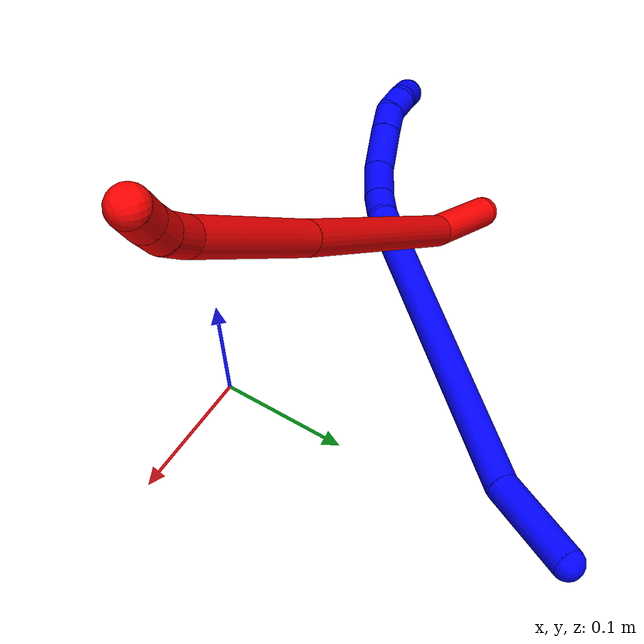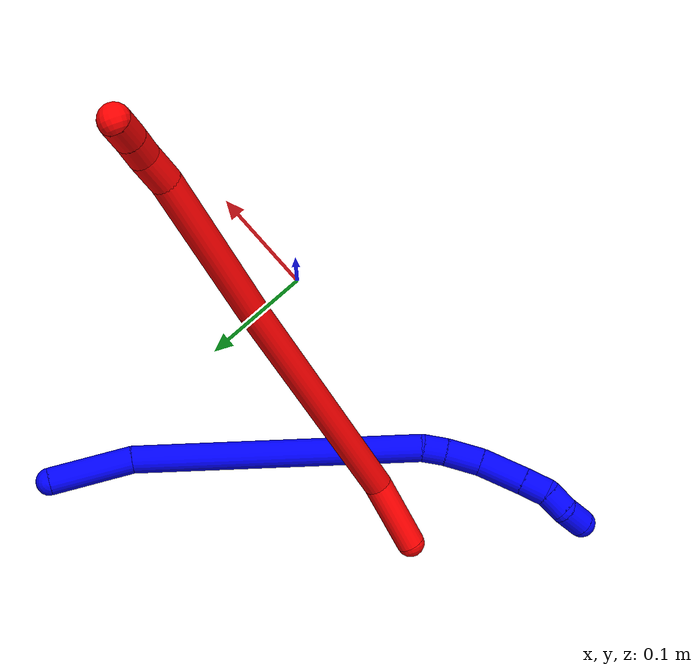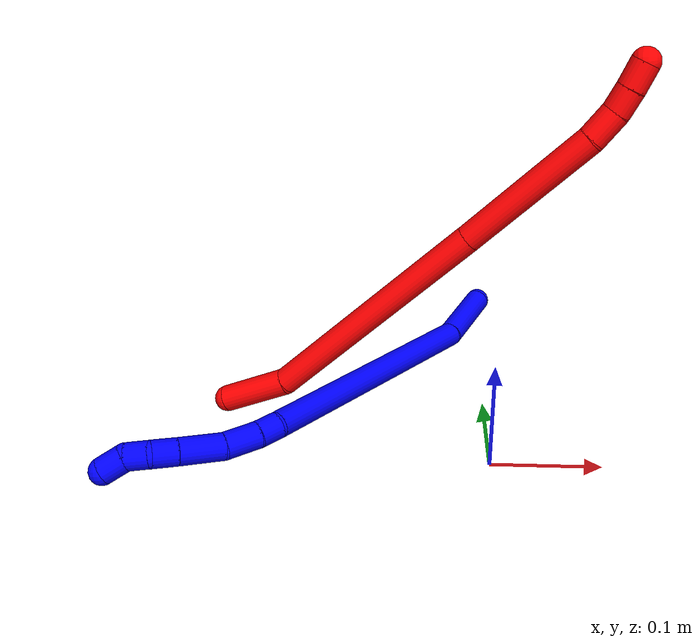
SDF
<sdf version="1.7">
 <world name="default">
  <plugin name="TubeGeneratorPlugin" filename="libtube_generator_plugin.so"/>
  <model name="photoneo_s_sensor">
   <static>1</static>
   <pose>0 0 2 1.57079 1.57079 3.14159</pose>
   <link name="link">
    <inertial><mass>0.1</mass></inertial>
    <sensor name="sensor" type="depth">
     <update_rate>30</update_rate>
     <camera>
      <horizontal_fov>1.22</horizontal_fov>
      <image><width>1920</width><height>1200</height><format>B8G8R8</format></image>
      <clip><near>0.1</near><far>4</far></clip>
      <depth_camera><output>points</output></depth_camera>
     </camera>
     <plugin name="camera_plugin" filename="libgazebo_ros_depth_camera.so">
      <baseline>0.2</baseline>
      <alwaysOn>1</alwaysOn>
      <updateRate>0.0</updateRate>
      <cameraName>camera_ir</cameraName>
      <imageTopicName>/camera/color/image_raw</imageTopicName>
      <cameraInfoTopicName>/camera/color/camera_info</cameraInfoTopicName>
      <depthImageTopicName>/camera/depth/image_raw</depthImageTopicName>
      <depthImageCameraInfoTopicName>/camera/depth/camera_info</depthImageCameraInfoTopicName>
      <pointCloudTopicName>/camera/depth/points</pointCloudTopicName>
      <frameName>fr_optical</frameName>
      <pointCloudCutoff>0.1</pointCloudCutoff>
      <pointCloudCutoffMax>2.0</pointCloudCutoffMax>
      <distortionK1>0</distortionK1>
      <distortionK2>0</distortionK2>
      <distortionK3>0</distortionK3>
      <distortionT1>0</distortionT1>
      <distortionT2>0</distortionT2>
      <CxPrime>0</CxPrime>
      <Cx>0</Cx>
      <Cy>0</Cy>
      <focalLength>0</focalLength>
      <hackBaseline>0</hackBaseline>
     </plugin>
    </sensor>
   </link>
  </model>
  <gravity>0 0 -9.8</gravity>
  <magnetic_field>6e-06 2.3e-05 -4.2e-05</magnetic_field>
  <atmosphere type="adiabatic"/>
  <physics name="default_physics" default="0" type="ode">
   <max_step_size>0.003</max_step_size>
   <real_time_factor>1</real_time_factor>
   <real_time_update_rate>1000</real_time_update_rate>
   <max_contacts>10000</max_contacts>
   <ode>
    <solver>
     <type>quick</type>
     <iters>100</iters>
     <sor>1.3</sor>
     <use_dynamic_moi_rescaling>0</use_dynamic_moi_rescaling>
    </solver>
    <constraints>
     <contact_max_correcting_vel>0</contact_max_correcting_vel>
     <contact_surface_layer>0.001</contact_surface_layer>
     <cfm>0</cfm>
     <erp>0.2</erp>
    </constraints>
   </ode>
  </physics>
  <scene><ambient>0.4 0.4 0.4 1</ambient><background>0.7 0.7 0.7 1</background><shadows>0</shadows></scene>
  <audio><device>default</device></audio>
  <spherical_coordinates>
   <surface_model>EARTH_WGS84</surface_model>
   <latitude_deg>0</latitude_deg>
   <longitude_deg>0</longitude_deg>
   <elevation>0</elevation>
   <heading_deg>0</heading_deg>
  </spherical_coordinates>
  <model name="bin">
   <static>1</static>
   <link name="bottom">
    <collision name="collision-bottom">
     <pose>0 0 -0.01 0 -0 0</pose>
     <geometry><box><size>0.8 0.6 0.02</size></box></geometry>
     <surface>
      <friction><ode><mu>100</mu><mu2>100</mu2></ode></friction>
      <contact><collide_bitmask>65535</collide_bitmask></contact>
     </surface>
    </collision>
   </link>
   <link name="west_wall">
    <collision name="collision-west_wall">
     <pose>-0.41 0 0.1 0 -0 0</pose>
     <geometry><box><size>0.02 0.6 0.2</size></box></geometry>
     <surface>
      <friction><ode><mu>100</mu><mu2>100</mu2></ode></friction>
      <contact><collide_bitmask>65535</collide_bitmask></contact>
     </surface>
    </collision>
   </link>
   <link name="east_wall">
    <collision name="collision-east_wall">
     <pose>0.41 0 0.1 0 -0 0</pose>
     <geometry><box><size>0.02 0.6 0.2</size></box></geometry>
     <surface>
      <friction><ode><mu>100</mu><mu2>100</mu2></ode></friction>
      <contact><collide_bitmask>65535</collide_bitmask></contact>
     </surface>
    </collision>
   </link>
   <link name="south_wall">
    <collision name="collision-south_wall">
     <pose>0 -0.31 0.1 0 -0 0</pose>
     <geometry><box><size>0.8 0.02 0.2</size></box></geometry>
     <surface>
      <friction><ode><mu>100</mu><mu2>100</mu2></ode></friction>
      <contact><collide_bitmask>65535</collide_bitmask></contact>
     </surface>
    </collision>
   </link>
   <link name="north_wall">
    <collision name="collision-north_wall">
     <pose>0 0.31 0.1 0 -0 0</pose>
     <geometry><box><size>0.8 0.02 0.2</size></box></geometry>
     <surface>
      <friction><ode><mu>100</mu><mu2>100</mu2></ode></friction>
      <contact><collide_bitmask>65535</collide_bitmask></contact>
     </surface>
    </collision>
   </link>
  </model>
  <model name="1">
   <static>0</static>
   <link name="1">
    <collision name="collision-cylinder-e_1_1_4">
     <pose>-0.027563 -0.025953 -0.003793 1.71592 -0.810196 -0.920956</pose>
     <geometry><cylinder><radius>0.0125</radius><length>0.076097</length></cylinder></geometry>
     <surface>
      <friction><ode><mu>1.16</mu><mu2>1.16</mu2><slip1>0</slip1><slip2>0</slip2></ode></friction>
      <contact><ode><kp>1e+06</kp><kd>1</kd><max_vel>0</max_vel><min_depth>0.001</min_depth></ode></contact>
     </surface>
    </collision>
    <visual name="visual-cylinder-e_1_1_4">
     <pose>-0.027563 -0.025953 -0.003793 1.71592 -0.810196 -0.920956</pose>
     <geometry><cylinder><radius>0.0125</radius><length>0.076097</length></cylinder></geometry>
     <material><ambient>0 0 1 1</ambient></material>
    </visual>
    <collision name="collision-cylinder-e_2_4_5">
     <pose>-0.126254 -0.154329 -0.044443 1.91622 -0.578787 -0.801351</pose>
     <geometry><cylinder><radius>0.0125</radius><length>0.260061</length></cylinder></geometry>
     <surface>
      <friction><ode><mu>1.16</mu><mu2>1.16</mu2><slip1>0</slip1><slip2>0</slip2></ode></friction>
      <contact><ode><kp>1e+06</kp><kd>1</kd><max_vel>0</max_vel><min_depth>0.001</min_depth></ode></contact>
     </surface>
    </collision>
    <visual name="visual-cylinder-e_2_4_5">
     <pose>-0.126254 -0.154329 -0.044443 1.91622 -0.578787 -0.801351</pose>
     <geometry><cylinder><radius>0.0125</radius><length>0.260061</length></cylinder></geometry>
     <material><ambient>0 0 1 1</ambient></material>
    </visual>
    <collision name="collision-cylinder-e_3_5_6">
     <pose>-0.201304 -0.266429 -0.083165 1.76119 -0.378751 -0.456199</pose>
     <geometry><cylinder><radius>0.0125</radius><length>0.021216</length></cylinder></geometry>
     <surface>
      <friction><ode><mu>1.16</mu><mu2>1.16</mu2><slip1>0</slip1><slip2>0</slip2></ode></friction>
      <contact><ode><kp>1e+06</kp><kd>1</kd><max_vel>0</max_vel><min_depth>0.001</min_depth></ode></contact>
     </surface>
    </collision>
    <visual name="visual-cylinder-e_3_5_6">
     <pose>-0.201304 -0.266429 -0.083165 1.76119 -0.378751 -0.456199</pose>
     <geometry><cylinder><radius>0.0125</radius><length>0.021216</length></cylinder></geometry>
     <material><ambient>0 0 1 1</ambient></material>
    </visual>
    <collision name="collision-cylinder-e_4_6_7">
     <pose>-0.209567 -0.291503 -0.08903 1.82497 -0.266401 -0.3431</pose>
     <geometry><cylinder><radius>0.0125</radius><length>0.032978</length></cylinder></geometry>
     <surface>
      <friction><ode><mu>1.16</mu><mu2>1.16</mu2><slip1>0</slip1><slip2>0</slip2></ode></friction>
      <contact><ode><kp>1e+06</kp><kd>1</kd><max_vel>0</max_vel><min_depth>0.001</min_depth></ode></contact>
     </surface>
    </collision>
    <visual name="visual-cylinder-e_4_6_7">
     <pose>-0.209567 -0.291503 -0.08903 1.82497 -0.266401 -0.3431</pose>
     <geometry><cylinder><radius>0.0125</radius><length>0.032978</length></cylinder></geometry>
     <material><ambient>0 0 1 1</ambient></material>
    </visual>
    <collision name="collision-cylinder-e_5_7_8">
     <pose>-0.216066 -0.325866 -0.101015 1.96929 -0.104474 -0.157161</pose>
     <geometry><cylinder><radius>0.0125</radius><length>0.041384</length></cylinder></geometry>
     <surface>
      <friction><ode><mu>1.16</mu><mu2>1.16</mu2><slip1>0</slip1><slip2>0</slip2></ode></friction>
      <contact><ode><kp>1e+06</kp><kd>1</kd><max_vel>0</max_vel><min_depth>0.001</min_depth></ode></contact>
     </surface>
    </collision>
    <visual name="visual-cylinder-e_5_7_8">
     <pose>-0.216066 -0.325866 -0.101015 1.96929 -0.104474 -0.157161</pose>
     <geometry><cylinder><radius>0.0125</radius><length>0.041384</length></cylinder></geometry>
     <material><ambient>0 0 1 1</ambient></material>
    </visual>
    <collision name="collision-cylinder-e_6_8_9">
     <pose>-0.219073 -0.355579 -0.113497 1.96708 -0.072758 -0.109253</pose>
     <geometry><cylinder><radius>0.0125</radius><length>0.02336</length></cylinder></geometry>
     <surface>
      <friction><ode><mu>1.16</mu><mu2>1.16</mu2><slip1>0</slip1><slip2>0</slip2></ode></friction>
      <contact><ode><kp>1e+06</kp><kd>1</kd><max_vel>0</max_vel><min_depth>0.001</min_depth></ode></contact>
     </surface>
    </collision>
    <visual name="visual-cylinder-e_6_8_9">
     <pose>-0.219073 -0.355579 -0.113497 1.96708 -0.072758 -0.109253</pose>
     <geometry><cylinder><radius>0.0125</radius><length>0.02336</length></cylinder></geometry>
     <material><ambient>0 0 1 1</ambient></material>
    </visual>
    <collision name="collision-cylinder-e_7_9_10">
     <pose>-0.21738 -0.376559 -0.119712 1.73719 0.240266 0.283445</pose>
     <geometry><cylinder><radius>0.0125</radius><length>0.021368</length></cylinder></geometry>
     <surface>
      <friction><ode><mu>1.16</mu><mu2>1.16</mu2><slip1>0</slip1><slip2>0</slip2></ode></friction>
      <contact><ode><kp>1e+06</kp><kd>1</kd><max_vel>0</max_vel><min_depth>0.001</min_depth></ode></contact>
     </surface>
    </collision>
    <visual name="visual-cylinder-e_7_9_10">
     <pose>-0.21738 -0.376559 -0.119712 1.73719 0.240266 0.283445</pose>
     <geometry><cylinder><radius>0.0125</radius><length>0.021368</length></cylinder></geometry>
     <material><ambient>0 0 1 1</ambient></material>
    </visual>
    <collision name="collision-cylinder-e_8_10_2">
     <pose>-0.214444 -0.398243 -0.118738 1.33982 0.03342 0.026473</pose>
     <geometry><cylinder><radius>0.0125</radius><length>0.023537</length></cylinder></geometry>
     <surface>
      <friction><ode><mu>1.16</mu><mu2>1.16</mu2><slip1>0</slip1><slip2>0</slip2></ode></friction>
      <contact><ode><kp>1e+06</kp><kd>1</kd><max_vel>0</max_vel><min_depth>0.001</min_depth></ode></contact>
     </surface>
    </collision>
    <visual name="visual-cylinder-e_8_10_2">
     <pose>-0.214444 -0.398243 -0.118738 1.33982 0.03342 0.026473</pose>
     <geometry><cylinder><radius>0.0125</radius><length>0.023537</length></cylinder></geometry>
     <material><ambient>0 0 1 1</ambient></material>
    </visual>
    <collision name="collision-sphere-2">
     <pose>-0.214051 -0.409692 -0.116046 0 -0 0</pose>
     <geometry><sphere><radius>0.0125</radius></sphere></geometry>
     <surface>
      <friction><ode><mu>1.16</mu><mu2>1.16</mu2><slip1>0</slip1><slip2>0</slip2></ode></friction>
      <contact><ode><kp>1e+06</kp><kd>1</kd><max_vel>0</max_vel><min_depth>0.001</min_depth></ode></contact>
     </surface>
    </collision>
    <visual name="visual-sphere-2">
     <pose>-0.214051 -0.409692 -0.116046 0 -0 0</pose>
     <geometry><sphere><radius>0.0125</radius></sphere></geometry>
     <material><ambient>0 0 1 1</ambient></material>
    </visual>
    <collision name="collision-sphere-10">
     <pose>-0.214837 -0.386793 -0.121431 0 -0 0</pose>
     <geometry><sphere><radius>0.0125</radius></sphere></geometry>
     <surface>
      <friction><ode><mu>1.16</mu><mu2>1.16</mu2><slip1>0</slip1><slip2>0</slip2></ode></friction>
      <contact><ode><kp>1e+06</kp><kd>1</kd><max_vel>0</max_vel><min_depth>0.001</min_depth></ode></contact>
     </surface>
    </collision>
    <visual name="visual-sphere-10">
     <pose>-0.214837 -0.386793 -0.121431 0 -0 0</pose>
     <geometry><sphere><radius>0.0125</radius></sphere></geometry>
     <material><ambient>0 0 1 1</ambient></material>
    </visual>
    <collision name="collision-sphere-9">
     <pose>-0.219922 -0.366325 -0.117993 0 -0 0</pose>
     <geometry><sphere><radius>0.0125</radius></sphere></geometry>
     <surface>
      <friction><ode><mu>1.16</mu><mu2>1.16</mu2><slip1>0</slip1><slip2>0</slip2></ode></friction>
      <contact><ode><kp>1e+06</kp><kd>1</kd><max_vel>0</max_vel><min_depth>0.001</min_depth></ode></contact>
     </surface>
    </collision>
    <visual name="visual-sphere-9">
     <pose>-0.219922 -0.366325 -0.117993 0 -0 0</pose>
     <geometry><sphere><radius>0.0125</radius></sphere></geometry>
     <material><ambient>0 0 1 1</ambient></material>
    </visual>
    <collision name="collision-sphere-4">
     <pose>-0.055126 -0.051906 -0.007586 0 -0 0</pose>
     <geometry><sphere><radius>0.0125</radius></sphere></geometry>
     <surface>
      <friction><ode><mu>1.16</mu><mu2>1.16</mu2><slip1>0</slip1><slip2>0</slip2></ode></friction>
      <contact><ode><kp>1e+06</kp><kd>1</kd><max_vel>0</max_vel><min_depth>0.001</min_depth></ode></contact>
     </surface>
    </collision>
    <visual name="visual-sphere-4">
     <pose>-0.055126 -0.051906 -0.007586 0 -0 0</pose>
     <geometry><sphere><radius>0.0125</radius></sphere></geometry>
     <material><ambient>0 0 1 1</ambient></material>
    </visual>
    <collision name="collision-sphere-1">
     <geometry><sphere><radius>0.0125</radius></sphere></geometry>
     <surface>
      <friction><ode><mu>1.16</mu><mu2>1.16</mu2><slip1>0</slip1><slip2>0</slip2></ode></friction>
      <contact><ode><kp>1e+06</kp><kd>1</kd><max_vel>0</max_vel><min_depth>0.001</min_depth></ode></contact>
     </surface>
    </collision>
    <visual name="visual-sphere-1">
     <geometry><sphere><radius>0.0125</radius></sphere></geometry>
     <material><ambient>0 0 1 1</ambient></material>
    </visual>
    <collision name="collision-sphere-8">
     <pose>-0.218224 -0.344833 -0.109001 0 -0 0</pose>
     <geometry><sphere><radius>0.0125</radius></sphere></geometry>
     <surface>
      <friction><ode><mu>1.16</mu><mu2>1.16</mu2><slip1>0</slip1><slip2>0</slip2></ode></friction>
      <contact><ode><kp>1e+06</kp><kd>1</kd><max_vel>0</max_vel><min_depth>0.001</min_depth></ode></contact>
     </surface>
    </collision>
    <visual name="visual-sphere-8">
     <pose>-0.218224 -0.344833 -0.109001 0 -0 0</pose>
     <geometry><sphere><radius>0.0125</radius></sphere></geometry>
     <material><ambient>0 0 1 1</ambient></material>
    </visual>
    <collision name="collision-sphere-5">
     <pose>-0.197382 -0.256751 -0.0813 0 -0 0</pose>
     <geometry><sphere><radius>0.0125</radius></sphere></geometry>
     <surface>
      <friction><ode><mu>1.16</mu><mu2>1.16</mu2><slip1>0</slip1><slip2>0</slip2></ode></friction>
      <contact><ode><kp>1e+06</kp><kd>1</kd><max_vel>0</max_vel><min_depth>0.001</min_depth></ode></contact>
     </surface>
    </collision>
    <visual name="visual-sphere-5">
     <pose>-0.197382 -0.256751 -0.0813 0 -0 0</pose>
     <geometry><sphere><radius>0.0125</radius></sphere></geometry>
     <material><ambient>0 0 1 1</ambient></material>
    </visual>
    <collision name="collision-sphere-6">
     <pose>-0.205226 -0.276107 -0.08503 0 -0 0</pose>
     <geometry><sphere><radius>0.0125</radius></sphere></geometry>
     <surface>
      <friction><ode><mu>1.16</mu><mu2>1.16</mu2><slip1>0</slip1><slip2>0</slip2></ode></friction>
      <contact><ode><kp>1e+06</kp><kd>1</kd><max_vel>0</max_vel><min_depth>0.001</min_depth></ode></contact>
     </surface>
    </collision>
    <visual name="visual-sphere-6">
     <pose>-0.205226 -0.276107 -0.08503 0 -0 0</pose>
     <geometry><sphere><radius>0.0125</radius></sphere></geometry>
     <material><ambient>0 0 1 1</ambient></material>
    </visual>
    <collision name="collision-sphere-7">
     <pose>-0.213908 -0.306899 -0.09303 0 -0 0</pose>
     <geometry><sphere><radius>0.0125</radius></sphere></geometry>
     <surface>
      <friction><ode><mu>1.16</mu><mu2>1.16</mu2><slip1>0</slip1><slip2>0</slip2></ode></friction>
      <contact><ode><kp>1e+06</kp><kd>1</kd><max_vel>0</max_vel><min_depth>0.001</min_depth></ode></contact>
     </surface>
    </collision>
    <visual name="visual-sphere-7">
     <pose>-0.213908 -0.306899 -0.09303 0 -0 0</pose>
     <geometry><sphere><radius>0.0125</radius></sphere></geometry>
     <material><ambient>0 0 1 1</ambient></material>
    </visual>
    <inertial>
     <pose>-0.139729 -0.193174 -0.057463 0 -0 0</pose>
     <mass>0.5</mass>
     <inertia>
      <ixx>-3.5e-05</ixx>
      <ixy>0</ixy>
      <ixz>0</ixz>
      <iyy>-0.000731</iyy>
      <iyz>0</iyz>
      <izz>0.002036</izz>
     </inertia>
    </inertial>
   </link>
   <pose>0.005248 0.288503 0.02025 2.86205 -0.017768 1.8781</pose>
  </model>
  <model name="2">
   <static>0</static>
   <link name="2">
    <collision name="collision-cylinder-e_1_1_4">
     <pose>0.008673 0.001585 -0.031425 -3.09119 0.268968 -2.77322</pose>
     <geometry><cylinder><radius>0.0125</radius><length>0.065277</length></cylinder></geometry>
     <surface>
      <friction><ode><mu>1.16</mu><mu2>1.16</mu2><slip1>0</slip1><slip2>0</slip2></ode></friction>
      <contact><ode><kp>1e+06</kp><kd>1</kd><max_vel>0</max_vel><min_depth>0.001</min_depth></ode></contact>
     </surface>
    </collision>
    <visual name="visual-cylinder-e_1_1_4">
     <pose>0.008673 0.001585 -0.031425 -3.09119 0.268968 -2.77322</pose>
     <geometry><cylinder><radius>0.0125</radius><length>0.065277</length></cylinder></geometry>
     <material><ambient>1 0 0 1</ambient></material>
    </visual>
    <collision name="collision-cylinder-e_2_4_5">
     <pose>0.080955 -2.8e-05 -0.155999 3.10727 0.59886 3.03051</pose>
     <geometry><cylinder><radius>0.0125</radius><length>0.225683</length></cylinder></geometry>
     <surface>
      <friction><ode><mu>1.16</mu><mu2>1.16</mu2><slip1>0</slip1><slip2>0</slip2></ode></friction>
      <contact><ode><kp>1e+06</kp><kd>1</kd><max_vel>0</max_vel><min_depth>0.001</min_depth></ode></contact>
     </surface>
    </collision>
    <visual name="visual-cylinder-e_2_4_5">
     <pose>0.080955 -2.8e-05 -0.155999 3.10727 0.59886 3.03051</pose>
     <geometry><cylinder><radius>0.0125</radius><length>0.225683</length></cylinder></geometry>
     <material><ambient>1 0 0 1</ambient></material>
    </visual>
    <collision name="collision-cylinder-e_3_5_6">
     <pose>0.182616 -0.007491 -0.304402 3.06457 0.601709 2.89449</pose>
     <geometry><cylinder><radius>0.0125</radius><length>0.134447</length></cylinder></geometry>
     <surface>
      <friction><ode><mu>1.16</mu><mu2>1.16</mu2><slip1>0</slip1><slip2>0</slip2></ode></friction>
      <contact><ode><kp>1e+06</kp><kd>1</kd><max_vel>0</max_vel><min_depth>0.001</min_depth></ode></contact>
     </surface>
    </collision>
    <visual name="visual-cylinder-e_3_5_6">
     <pose>0.182616 -0.007491 -0.304402 3.06457 0.601709 2.89449</pose>
     <geometry><cylinder><radius>0.0125</radius><length>0.134447</length></cylinder></geometry>
     <material><ambient>1 0 0 1</ambient></material>
    </visual>
    <collision name="collision-cylinder-e_4_6_7">
     <pose>0.230755 -0.012304 -0.369926 3.08826 0.77559 3.01118</pose>
     <geometry><cylinder><radius>0.0125</radius><length>0.028813</length></cylinder></geometry>
     <surface>
      <friction><ode><mu>1.16</mu><mu2>1.16</mu2><slip1>0</slip1><slip2>0</slip2></ode></friction>
      <contact><ode><kp>1e+06</kp><kd>1</kd><max_vel>0</max_vel><min_depth>0.001</min_depth></ode></contact>
     </surface>
    </collision>
    <visual name="visual-cylinder-e_4_6_7">
     <pose>0.230755 -0.012304 -0.369926 3.08826 0.77559 3.01118</pose>
     <geometry><cylinder><radius>0.0125</radius><length>0.028813</length></cylinder></geometry>
     <material><ambient>1 0 0 1</ambient></material>
    </visual>
    <collision name="collision-cylinder-e_5_7_8">
     <pose>0.249453 -0.014886 -0.386807 2.84307 0.894279 2.53383</pose>
     <geometry><cylinder><radius>0.0125</radius><length>0.022088</length></cylinder></geometry>
     <surface>
      <friction><ode><mu>1.16</mu><mu2>1.16</mu2><slip1>0</slip1><slip2>0</slip2></ode></friction>
      <contact><ode><kp>1e+06</kp><kd>1</kd><max_vel>0</max_vel><min_depth>0.001</min_depth></ode></contact>
     </surface>
    </collision>
    <visual name="visual-cylinder-e_5_7_8">
     <pose>0.249453 -0.014886 -0.386807 2.84307 0.894279 2.53383</pose>
     <geometry><cylinder><radius>0.0125</radius><length>0.022088</length></cylinder></geometry>
     <material><ambient>1 0 0 1</ambient></material>
    </visual>
    <collision name="collision-cylinder-e_6_8_2">
     <pose>0.267766 -0.018999 -0.399888 2.83072 0.959595 2.55658</pose>
     <geometry><cylinder><radius>0.0125</radius><length>0.023692</length></cylinder></geometry>
     <surface>
      <friction><ode><mu>1.16</mu><mu2>1.16</mu2><slip1>0</slip1><slip2>0</slip2></ode></friction>
      <contact><ode><kp>1e+06</kp><kd>1</kd><max_vel>0</max_vel><min_depth>0.001</min_depth></ode></contact>
     </surface>
    </collision>
    <visual name="visual-cylinder-e_6_8_2">
     <pose>0.267766 -0.018999 -0.399888 2.83072 0.959595 2.55658</pose>
     <geometry><cylinder><radius>0.0125</radius><length>0.023692</length></cylinder></geometry>
     <material><ambient>1 0 0 1</ambient></material>
    </visual>
    <collision name="collision-sphere-2">
     <pose>0.277468 -0.021078 -0.40636 0 -0 0</pose>
     <geometry><sphere><radius>0.0125</radius></sphere></geometry>
     <surface>
      <friction><ode><mu>1.16</mu><mu2>1.16</mu2><slip1>0</slip1><slip2>0</slip2></ode></friction>
      <contact><ode><kp>1e+06</kp><kd>1</kd><max_vel>0</max_vel><min_depth>0.001</min_depth></ode></contact>
     </surface>
    </collision>
    <visual name="visual-sphere-2">
     <pose>0.277468 -0.021078 -0.40636 0 -0 0</pose>
     <geometry><sphere><radius>0.0125</radius></sphere></geometry>
     <material><ambient>1 0 0 1</ambient></material>
    </visual>
    <collision name="collision-sphere-4">
     <pose>0.017346 0.00317 -0.06285 0 -0 0</pose>
     <geometry><sphere><radius>0.0125</radius></sphere></geometry>
     <surface>
      <friction><ode><mu>1.16</mu><mu2>1.16</mu2><slip1>0</slip1><slip2>0</slip2></ode></friction>
      <contact><ode><kp>1e+06</kp><kd>1</kd><max_vel>0</max_vel><min_depth>0.001</min_depth></ode></contact>
     </surface>
    </collision>
    <visual name="visual-sphere-4">
     <pose>0.017346 0.00317 -0.06285 0 -0 0</pose>
     <geometry><sphere><radius>0.0125</radius></sphere></geometry>
     <material><ambient>1 0 0 1</ambient></material>
    </visual>
    <collision name="collision-sphere-1">
     <geometry><sphere><radius>0.0125</radius></sphere></geometry>
     <surface>
      <friction><ode><mu>1.16</mu><mu2>1.16</mu2><slip1>0</slip1><slip2>0</slip2></ode></friction>
      <contact><ode><kp>1e+06</kp><kd>1</kd><max_vel>0</max_vel><min_depth>0.001</min_depth></ode></contact>
     </surface>
    </collision>
    <visual name="visual-sphere-1">
     <geometry><sphere><radius>0.0125</radius></sphere></geometry>
     <material><ambient>1 0 0 1</ambient></material>
    </visual>
    <collision name="collision-sphere-8">
     <pose>0.258065 -0.016919 -0.393415 0 -0 0</pose>
     <geometry><sphere><radius>0.0125</radius></sphere></geometry>
     <surface>
      <friction><ode><mu>1.16</mu><mu2>1.16</mu2><slip1>0</slip1><slip2>0</slip2></ode></friction>
      <contact><ode><kp>1e+06</kp><kd>1</kd><max_vel>0</max_vel><min_depth>0.001</min_depth></ode></contact>
     </surface>
    </collision>
    <visual name="visual-sphere-8">
     <pose>0.258065 -0.016919 -0.393415 0 -0 0</pose>
     <geometry><sphere><radius>0.0125</radius></sphere></geometry>
     <material><ambient>1 0 0 1</ambient></material>
    </visual>
    <collision name="collision-sphere-5">
     <pose>0.144564 -0.003227 -0.249149 0 -0 0</pose>
     <geometry><sphere><radius>0.0125</radius></sphere></geometry>
     <surface>
      <friction><ode><mu>1.16</mu><mu2>1.16</mu2><slip1>0</slip1><slip2>0</slip2></ode></friction>
      <contact><ode><kp>1e+06</kp><kd>1</kd><max_vel>0</max_vel><min_depth>0.001</min_depth></ode></contact>
     </surface>
    </collision>
    <visual name="visual-sphere-5">
     <pose>0.144564 -0.003227 -0.249149 0 -0 0</pose>
     <geometry><sphere><radius>0.0125</radius></sphere></geometry>
     <material><ambient>1 0 0 1</ambient></material>
    </visual>
    <collision name="collision-sphere-6">
     <pose>0.220668 -0.011755 -0.359654 0 -0 0</pose>
     <geometry><sphere><radius>0.0125</radius></sphere></geometry>
     <surface>
      <friction><ode><mu>1.16</mu><mu2>1.16</mu2><slip1>0</slip1><slip2>0</slip2></ode></friction>
      <contact><ode><kp>1e+06</kp><kd>1</kd><max_vel>0</max_vel><min_depth>0.001</min_depth></ode></contact>
     </surface>
    </collision>
    <visual name="visual-sphere-6">
     <pose>0.220668 -0.011755 -0.359654 0 -0 0</pose>
     <geometry><sphere><radius>0.0125</radius></sphere></geometry>
     <material><ambient>1 0 0 1</ambient></material>
    </visual>
    <collision name="collision-sphere-7">
     <pose>0.240841 -0.012852 -0.380198 0 -0 0</pose>
     <geometry><sphere><radius>0.0125</radius></sphere></geometry>
     <surface>
      <friction><ode><mu>1.16</mu><mu2>1.16</mu2><slip1>0</slip1><slip2>0</slip2></ode></friction>
      <contact><ode><kp>1e+06</kp><kd>1</kd><max_vel>0</max_vel><min_depth>0.001</min_depth></ode></contact>
     </surface>
    </collision>
    <visual name="visual-sphere-7">
     <pose>0.240841 -0.012852 -0.380198 0 -0 0</pose>
     <geometry><sphere><radius>0.0125</radius></sphere></geometry>
     <material><ambient>1 0 0 1</ambient></material>
    </visual>
    <inertial>
     <pose>0.123783 -0.004087 -0.213721 0 -0 0</pose>
     <mass>0.5</mass>
     <inertia>
      <ixx>-0.000842</ixx>
      <ixy>0</ixy>
      <ixz>0</ixz>
      <iyy>0.001317</iyy>
      <iyz>0</iyz>
      <izz>-0.000666</izz>
     </inertia>
    </inertial>
   </link>
   <pose>-0.248335 0.081853 0.011586 -2.01341 -1.04815 1.59675</pose>
  </model>
 </world>
</sdf>
